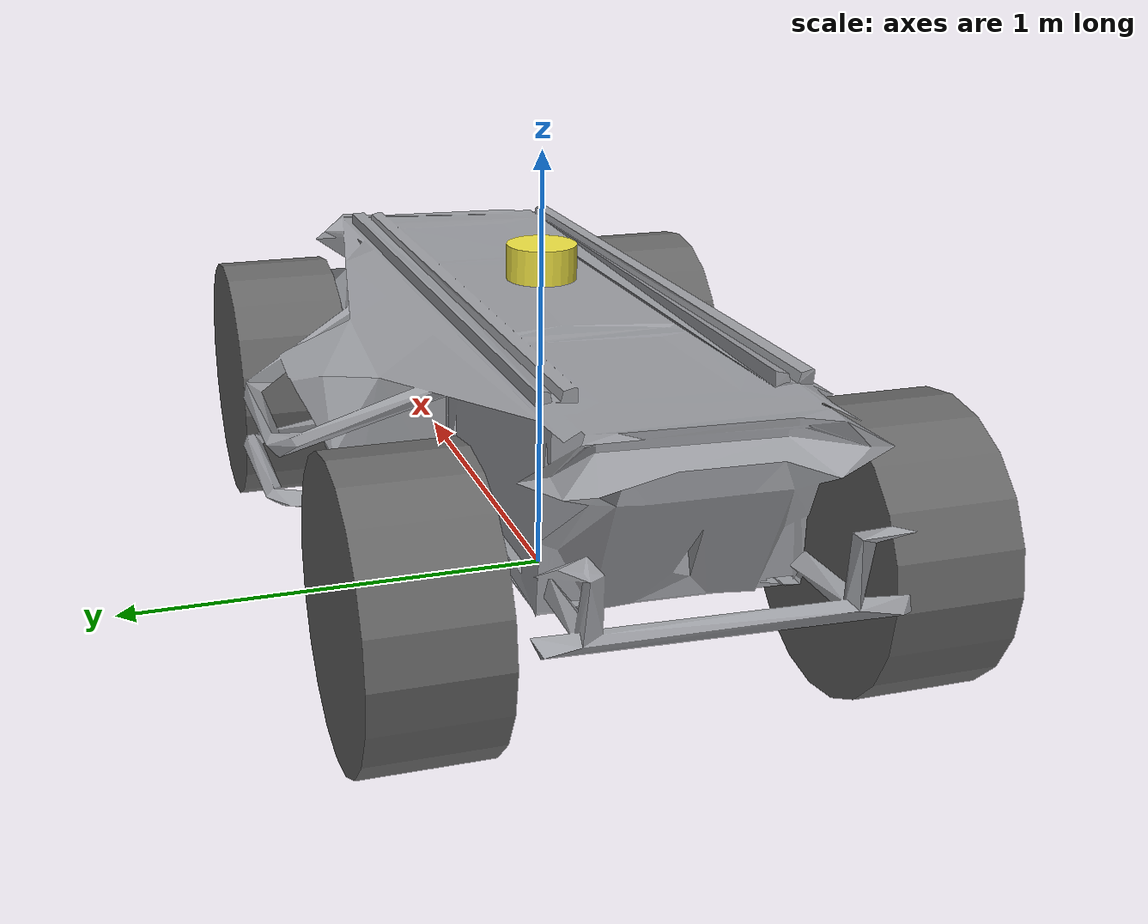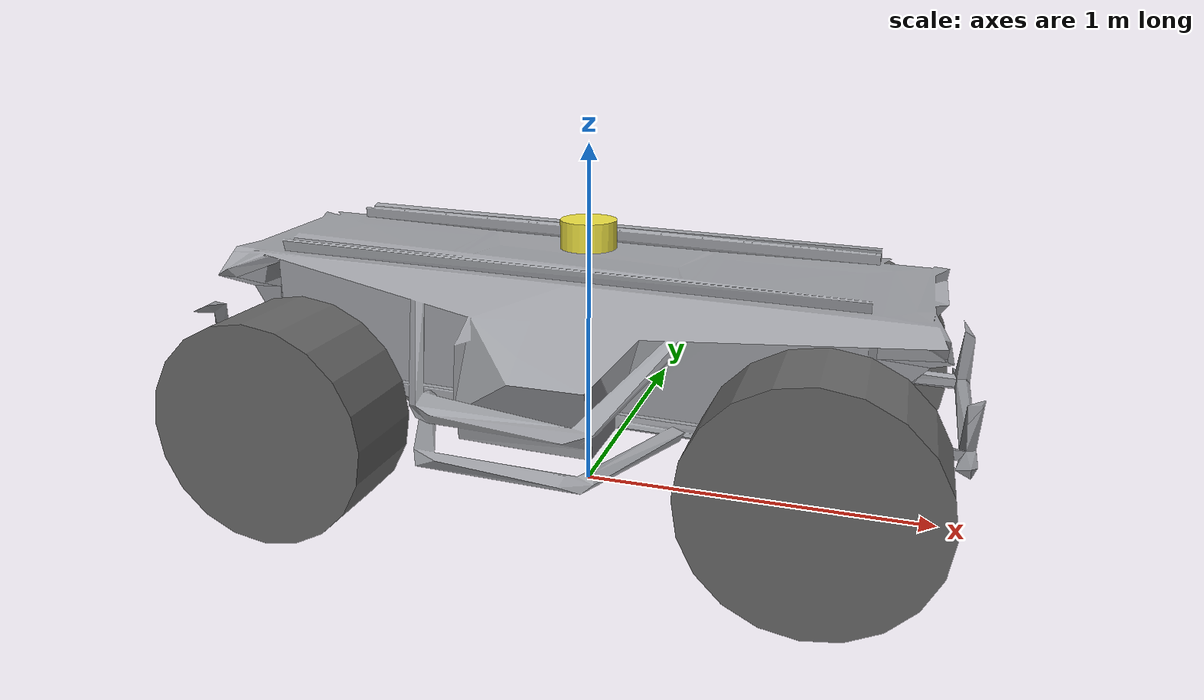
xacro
<?xml version="1.0" ?>
<robot name="scout" xmlns:xacro="http://www.ros.org/wiki/xacro">
  <material name="light_black">
    <color rgba="0.4 0.4 0.4 1.0"/>
  </material>

  <!-- ++++++++++++++++++++++ LINK base_link & sensors ++++++++++++++++++++++ -->
  <link name="base_footprint"/>

  <link name="base_link">
    <visual>
      <origin xyz="0.0 0 0.48" rpy="0.0 0.0 0.0"/>
      <geometry>
        <mesh filename="package://robot_description/models/scout/meshes/model.dae"/>
      </geometry>
    </visual>
  </link>

  <link name="camera_link" />

  <link name="base_scan">
    <visual>
      <geometry>
        <cylinder radius="0.08" length="0.08"/>
      </geometry>
    </visual>
    <collision>
      <geometry>
        <cylinder radius="0.08" length="0.08"/>
      </geometry>
    </collision>
  </link>

  <link name="imu_link" />

  <link name="gps_link" />

  <!-- ++++++++++++++++++++++ LINK steers & wheels ++++++++++++++++++++++ -->
  <link name="front_left_wheel">
    <inertial>
      <mass value="11.0"/>
      <inertia ixx="0.58631238" ixy="0.0" ixz="0.0" iyy="0.33552910" iyz="0.0" izz="0.33552910"/>
    </inertial>

    <visual>
      <geometry>
        <mesh filename="package://robot_description/models/scout/meshes/wheel.dae"/>
      </geometry>
      <material name="light_black"/>
    </visual>

    <collision>
      <geometry>
        <mesh filename="package://robot_description/models/scout/meshes/wheel.dae"/>
      </geometry>
    </collision>
  </link>

  <link name="front_right_wheel">
    <inertial>
      <mass value="11.0"/>
      <inertia ixx="0.58631238" ixy="0.0" ixz="0.0" iyy="0.33552910" iyz="0.0" izz="0.33552910"/>
    </inertial>

    <visual>
      <geometry>
        <mesh filename="package://robot_description/models/scout/meshes/wheel.dae"/>
      </geometry>
      <material name="light_black"/>
    </visual>

    <collision>
      <geometry>
        <mesh filename="package://robot_description/models/scout/meshes/wheel.dae"/>
      </geometry>
    </collision>
  </link>

  <link name="rear_left_wheel">
    <inertial>
      <mass value="11.0"/>
      <inertia ixx="0.58631238" ixy="0.0" ixz="0.0" iyy="0.33552910" iyz="0.0" izz="0.33552910"/>
    </inertial>

    <visual>
      <geometry>
        <mesh filename="package://robot_description/models/scout/meshes/wheel.dae"/>
      </geometry>
      <material name="light_black"/>
    </visual>

    <collision>
      <geometry>
        <mesh filename="package://robot_description/models/scout/meshes/wheel.dae"/>
      </geometry>
    </collision>
  </link>

  <link name="rear_right_wheel">
    <inertial>
      <mass value="11.0"/>
      <inertia ixx="0.58631238" ixy="0.0" ixz="0.0" iyy="0.33552910" iyz="0.0" izz="0.33552910"/>
    </inertial>

    <visual>
      <geometry>
        <mesh filename="package://robot_description/models/scout/meshes/wheel.dae"/>
      </geometry>
      <material name="light_black"/>
    </visual>

    <collision>
      <geometry>
        <mesh filename="package://robot_description/models/scout/meshes/wheel.dae"/>
      </geometry>
    </collision>
  </link>

  <!-- ++++++++++++++++++++++ JOINT ++++++++++++++++++++++ -->
  <joint name="base_joint" type="fixed">
    <parent link="base_footprint"/>
    <child link="base_link"/>
    <origin xyz="0.0 0.0 0.0" rpy="0 0 0"/>
  </joint>

  <joint name="front_left_combined_joint" type="continuous">
    <origin xyz="0.7 0.5 0.3" rpy="0.0 0 1.57"/>
    <parent link="base_link"/>
    <child link="front_left_wheel"/>
    <axis xyz="1 0 0"/>
  </joint>

  <joint name="front_right_combined_joint" type="continuous">
    <origin xyz="0.7 -0.5 0.3" rpy="0.0 0 1.57"/>
    <parent link="base_link"/>
    <child link="front_right_wheel"/>
    <axis xyz="1 0 0"/>
  </joint>

  <joint name="rear_left_wheel_joint" type="continuous">
    <origin xyz="-0.7 0.5 0.3" rpy="0.0 0 1.57"/>
    <parent link="base_link"/>
    <child link="rear_left_wheel"/>
    <axis xyz="1 0 0"/>
  </joint>

  <joint name="rear_right_wheel_joint" type="continuous">
    <origin xyz="-0.7 -0.5 0.3" rpy="0.0 0 1.57"/>
    <parent link="base_link"/>
    <child link="rear_right_wheel"/>
    <axis xyz="1 0 0"/>
  </joint>

  <joint name="camera_joint" type="fixed">
    <origin xyz="0.7 0 0.8" rpy="0.0 0.0 0.0"/>
    <parent link="base_link"/>
    <child link="camera_link" />
  </joint>

  <joint name="lidar_joint" type="fixed">
    <origin xyz="0.0 0 0.75" rpy="0.0 0.0 0.0"/>
    <parent link="base_link"/>
    <child link="base_scan"/>
  </joint>

  <joint name="imu_joint" type="fixed">
    <origin xyz="0.0 0 0.35" rpy="0.0 0.0 0.0"/>
    <parent link="base_link"/>
    <child link="imu_link"/>
  </joint>

  <joint name="gps_joint" type="fixed">
    <origin xyz="0.0 0.0 0.5" rpy="0.0 0.0 0.0"/>
    <parent link="base_link"/>
    <child link="gps_link"/>
  </joint>

</robot>
